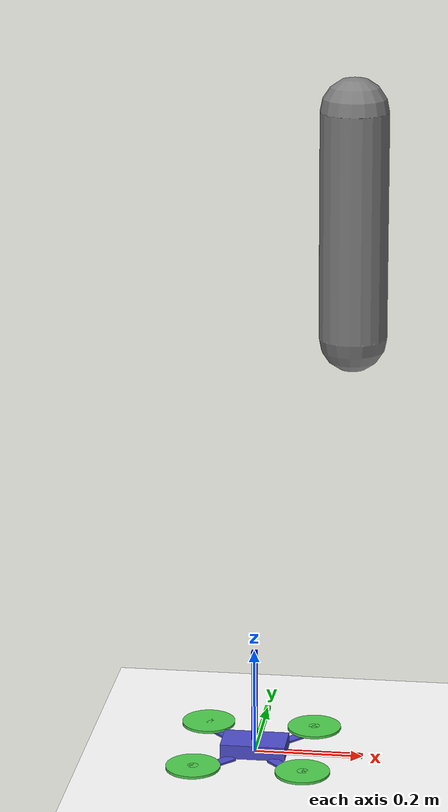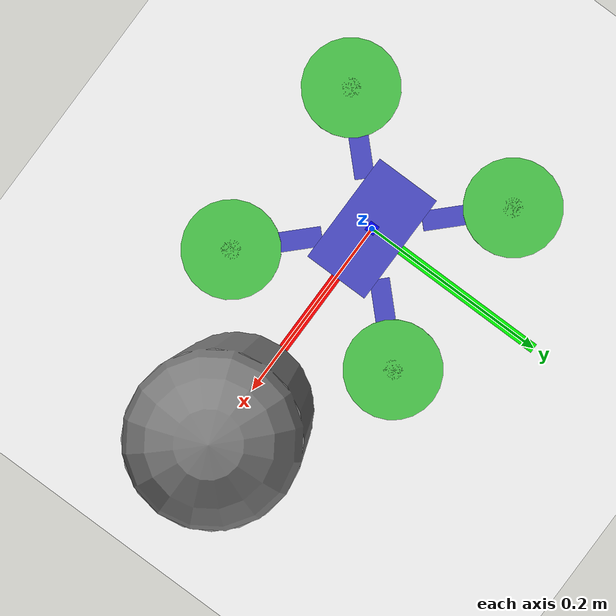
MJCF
<!--This has been copied from: https://github.com/ethz-asl/reinmav-gym/blob/master/gym_reinmav/envs/mujoco/assets/quadrotor_hovering.xml -->

<mujoco model="quadrotor0">
	<compiler inertiafromgeom="true" coordinate="local"/>
	<option	timestep="0.01" gravity="0 0 -9.81" density="1" viscosity="1e-5" />
	<worldbody>
		<geom name="floor" pos="0 0 0" size="2 2 .2" type="plane"  conaffinity="1" rgba="1 1 1 1" condim="3"/>
		<body name="quadrotor" pos="0 0 0" >
			<geom name="core" type="box" pos="0 0 0" quat = "1. 0. 0. 0" size="0.06 0.035 0.025"  rgba="0.3 0.3 0.8 1" mass = ".1"/>

			<geom name="a00" type="box" pos=".071 0.071 0.0" size="0.05 0.01 0.0025"  quat = ".924 0.0 0.0 0.383" rgba="0.3 0.3 0.8 1" mass = ".025"/>
			<geom name="a10" type="box" pos=".071 -0.071 0.0" size="0.05 0.01 0.0025"  quat = ".383 0.0 0.0 0.924" rgba="0.3 0.3 0.8 1" mass = ".025"/>
			<geom name="a20" type="box" pos="-0.071 -0.071 0.0" size="0.05 0.01 0.0025"  quat = "-.383 0.0 0.0 0.924" rgba="0.3 0.3 0.8 1" mass = ".025"/>
			<geom name="a30" type="box" pos="-.071 0.071 0.0" size="0.05 0.01 0.0025"  quat = ".924 0.0 0.0 -0.383" rgba="0.3 0.3 0.8 1" mass = ".025"/>

			<joint name="root"   type="free" damping="0" armature="0" pos="0 0 0" />

			<!-- Motor sites to attach motor actuators -->
            <site name="motor0" type="cylinder" pos=" 0.1  0.1 0.01"  size="0.01 0.0025"  quat = "1.0 0.0 0.0 0." rgba="0.3 0.8 0.3 1"/>
            <site name="motor1" type="cylinder" pos=" 0.1 -0.1 0.01"  size="0.01 0.0025"  quat = "1.0 0.0 0.0 0." rgba="0.3 0.8 0.3 1"/>
            <site name="motor2" type="cylinder" pos="-0.1 -0.1 0.01"  size="0.01 0.0025"  quat = "1.0 0.0 0.0 0." rgba="0.3 0.8 0.3 1"/>
            <site name="motor3" type="cylinder" pos="-0.1  0.1 0.01"  size="0.01 0.0025"  quat = "1.0 0.0 0.0 0." rgba="0.3 0.8 0.3 1"/>

			<!-- Thruster geometries for collisions since site's are excluded from collision checking -->
            <geom name="thruster0" type="cylinder" pos=" 0.1  0.1  0.01" size="0.05 0.0025"  quat = "1.0 0.0 0.0 0." rgba="0.3 0.8 0.3 1" mass = ".025"/>
            <geom name="thruster1" type="cylinder" pos=" 0.1 -0.1  0.01" size="0.05 0.0025"  quat = "1.0 0.0 0.0 0." rgba="0.3 0.8 0.3 1" mass = ".025"/>
            <geom name="thruster2" type="cylinder" pos="-0.1 -0.1  0.01" size="0.05 0.0025"  quat = "1.0 0.0 0.0 0." rgba="0.3 0.8 0.3 1" mass = ".025"/>
            <geom name="thruster3" type="cylinder" pos="-0.1  0.1  0.01" size="0.05 0.0025"  quat = "1.0 0.0 0.0 0." rgba="0.3 0.8 0.3 1" mass = ".025"/>

            <!-- Visualization of the coordinate frame -->
			<site name="qcX" type="box" pos="0.1 0.0 0.0" size="0.1 0.005 0.005"  quat = " 1.000  0.0  0.0    0."     rgba="1 0 0 1" />
			<site name="qcY" type="box" pos="0.0 0.1 0.0" size="0.1 0.005 0.005"  quat = " 0.707  0.0  0.0    0.707"  rgba="0 1 0 1" />
			<site name="qcZ" type="box" pos="0.0 0.0 0.1" size="0.1 0.005 0.005"  quat = "-0.707  0.0  0.707  0."     rgba="0 0 1 1" />
		</body>
		<body name="target" pos="0.175 0 0.2">
            <geom type="capsule" fromto="0 0 1  0 0 0.6" size="0.06"/>
        </body>
	</worldbody>
    <actuator>
        <motor ctrllimited="true" ctrlrange="0.0 1.0" gear="0  0. 1. 0. 0. -0.1" site="motor0"/>
        <motor ctrllimited="true" ctrlrange="0.0 1.0" gear="0  0. 1. 0. 0.  0.1" site="motor1"/>
        <motor ctrllimited="true" ctrlrange="0.0 1.0" gear="0  0. 1. 0. 0. -0.1" site="motor2"/>
        <motor ctrllimited="true" ctrlrange="0.0 1.0" gear="0  0. 1. 0. 0.  0.1" site="motor3"/>
	</actuator>
</mujoco>
